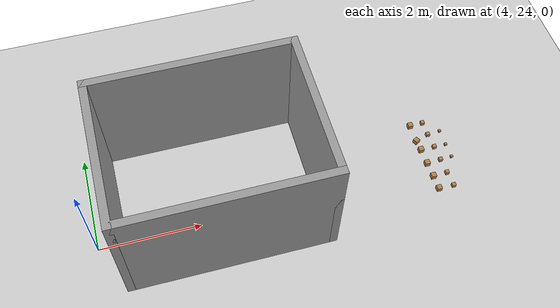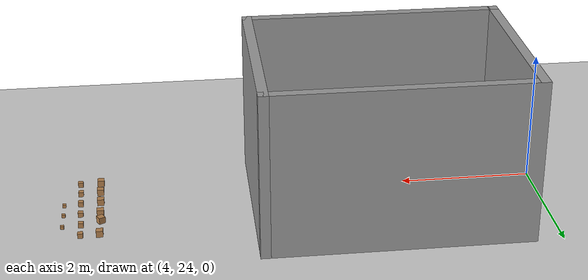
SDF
<sdf version="1.6">
 <world name="default">
  <model name="ground_plane">
   <static>1</static>
   <link name="link">
    <collision name="collision">
     <geometry><plane><normal>0 0 1</normal><size>105 105</size></plane></geometry>
     <surface>
      <contact><collide_bitmask>65535</collide_bitmask></contact>
      <friction><ode><mu>100</mu><mu2>50</mu2></ode></friction>
     </surface>
    </collision>
    <visual name="visual">
     <cast_shadows>0</cast_shadows>
     <geometry><plane><normal>0 0 1</normal><size>105 105</size></plane></geometry>
     <material>
      <script><uri>file://media/materials/scripts/gazebo.material</uri><name>Gazebo/Grey</name></script>
     </material>
    </visual>
   </link>
  </model>
  <model name="base3x4_29">
   <pose>6.40581 24.5341 0 0 -0 0</pose>
   <link name="Wall_18">
    <collision name="Wall_18_Collision">
     <geometry><box><size>3 0.15 2.5</size></box></geometry>
     <pose>0 0 1.25 0 -0 0</pose>
    </collision>
    <visual name="Wall_18_Visual">
     <pose>0 0 1.25 0 -0 0</pose>
     <geometry><box><size>3 0.15 2.5</size></box></geometry>
     <material>
      <script><uri>file://media/materials/scripts/gazebo.material</uri><name>Gazebo/Grey</name></script>
      <ambient>1 1 1 1</ambient>
     </material>
     <meta><layer>0</layer></meta>
    </visual>
    <pose>-1.925 -0 0 0 -0 -1.5708</pose>
   </link>
   <link name="Wall_19">
    <collision name="Wall_19_Collision">
     <geometry><box><size>4 0.15 2.5</size></box></geometry>
     <pose>0 0 1.25 0 -0 0</pose>
    </collision>
    <visual name="Wall_19_Visual">
     <pose>0 0 1.25 0 -0 0</pose>
     <geometry><box><size>4 0.15 2.5</size></box></geometry>
     <material>
      <script><uri>file://media/materials/scripts/gazebo.material</uri><name>Gazebo/Grey</name></script>
      <ambient>1 1 1 1</ambient>
     </material>
     <meta><layer>0</layer></meta>
    </visual>
    <pose>-0 -1.425 0 0 -0 0</pose>
   </link>
   <link name="Wall_20">
    <collision name="Wall_20_Collision">
     <geometry><box><size>3 0.15 2.5</size></box></geometry>
     <pose>0 0 1.25 0 -0 0</pose>
    </collision>
    <visual name="Wall_20_Visual">
     <pose>0 0 1.25 0 -0 0</pose>
     <geometry><box><size>3 0.15 2.5</size></box></geometry>
     <material>
      <script><uri>file://media/materials/scripts/gazebo.material</uri><name>Gazebo/Grey</name></script>
      <ambient>1 1 1 1</ambient>
     </material>
     <meta><layer>0</layer></meta>
    </visual>
    <pose>1.925 -0 0 0 -0 1.5708</pose>
   </link>
   <link name="Wall_21">
    <collision name="Wall_21_Collision">
     <geometry><box><size>4 0.15 2.5</size></box></geometry>
     <pose>0 0 1.25 0 -0 0</pose>
    </collision>
    <visual name="Wall_21_Visual">
     <pose>0 0 1.25 0 -0 0</pose>
     <geometry><box><size>4 0.15 2.5</size></box></geometry>
     <material>
      <script><uri>file://media/materials/scripts/gazebo.material</uri><name>Gazebo/Grey</name></script>
      <ambient>1 1 1 1</ambient>
     </material>
     <meta><layer>0</layer></meta>
    </visual>
    <pose>-0 1.425 0 0 -0 3.14159</pose>
   </link>
   <static>1</static>
  </model>
  <model name="wood_cube_10cm">
   <link name="link">
    <pose>0 0 0.05 0 -0 0</pose>
    <inertial>
     <mass>0.5167</mass>
     <inertia>
      <ixx>0.000861167</ixx>
      <ixy>0</ixy>
      <ixz>0</ixz>
      <iyy>0.000861167</iyy>
      <iyz>0</iyz>
      <izz>0.000861167</izz>
     </inertia>
    </inertial>
    <collision name="collision">
     <geometry><box><size>0.1 0.1 0.1</size></box></geometry>
     <surface>
      <contact>
       <poissons_ratio>0.347</poissons_ratio>
       <elastic_modulus>8.8e+09</elastic_modulus>
       <ode><kp>100000</kp><kd>100</kd><max_vel>100</max_vel><min_depth>0.001</min_depth></ode>
      </contact>
      <friction>
       <torsional>
        <coefficient>1</coefficient>
        <use_patch_radius>0</use_patch_radius>
        <surface_radius>0.01</surface_radius>
       </torsional>
      </friction>
     </surface>
    </collision>
    <visual name="visual">
     <geometry><box><size>0.1 0.1 0.1</size></box></geometry>
     <material>
      <script><uri>file://media/materials/scripts/gazebo.material</uri><name>Gazebo/Wood</name></script>
     </material>
    </visual>
   </link>
   <pose>10.6933 23.5723 -0.001013 0 -0 0</pose>
  </model>
  <model name="wood_cube_10cm_0">
   <link name="link">
    <pose>0 0 0.05 0 -0 0</pose>
    <inertial>
     <mass>0.5167</mass>
     <inertia>
      <ixx>0.000861167</ixx>
      <ixy>0</ixy>
      <ixz>0</ixz>
      <iyy>0.000861167</iyy>
      <iyz>0</iyz>
      <izz>0.000861167</izz>
     </inertia>
    </inertial>
    <collision name="collision">
     <geometry><box><size>0.1 0.1 0.1</size></box></geometry>
     <surface>
      <contact>
       <poissons_ratio>0.347</poissons_ratio>
       <elastic_modulus>8.8e+09</elastic_modulus>
       <ode><kp>100000</kp><kd>100</kd><max_vel>100</max_vel><min_depth>0.001</min_depth></ode>
      </contact>
      <friction>
       <torsional>
        <coefficient>1</coefficient>
        <use_patch_radius>0</use_patch_radius>
        <surface_radius>0.01</surface_radius>
       </torsional>
      </friction>
     </surface>
    </collision>
    <visual name="visual">
     <geometry><box><size>0.1 0.1 0.1</size></box></geometry>
     <material>
      <script><uri>file://media/materials/scripts/gazebo.material</uri><name>Gazebo/Wood</name></script>
     </material>
    </visual>
   </link>
   <pose>10.69 23.8636 -0.001013 0 -0 0</pose>
  </model>
  <model name="wood_cube_10cm_1">
   <link name="link">
    <pose>0 0 0.05 0 -0 0</pose>
    <inertial>
     <mass>0.5167</mass>
     <inertia>
      <ixx>0.000861167</ixx>
      <ixy>0</ixy>
      <ixz>0</ixz>
      <iyy>0.000861167</iyy>
      <iyz>0</iyz>
      <izz>0.000861167</izz>
     </inertia>
    </inertial>
    <collision name="collision">
     <geometry><box><size>0.1 0.1 0.1</size></box></geometry>
     <surface>
      <contact>
       <poissons_ratio>0.347</poissons_ratio>
       <elastic_modulus>8.8e+09</elastic_modulus>
       <ode><kp>100000</kp><kd>100</kd><max_vel>100</max_vel><min_depth>0.001</min_depth></ode>
      </contact>
      <friction>
       <torsional>
        <coefficient>1</coefficient>
        <use_patch_radius>0</use_patch_radius>
        <surface_radius>0.01</surface_radius>
       </torsional>
      </friction>
     </surface>
    </collision>
    <visual name="visual">
     <geometry><box><size>0.1 0.1 0.1</size></box></geometry>
     <material>
      <script><uri>file://media/materials/scripts/gazebo.material</uri><name>Gazebo/Wood</name></script>
     </material>
    </visual>
   </link>
   <pose>10.6798 24.1748 -0.001013 0 -0 0</pose>
  </model>
  <model name="wood_cube_10cm_2">
   <link name="link">
    <pose>0 0 0.05 0 -0 0</pose>
    <inertial>
     <mass>0.5167</mass>
     <inertia>
      <ixx>0.000861167</ixx>
      <ixy>0</ixy>
      <ixz>0</ixz>
      <iyy>0.000861167</iyy>
      <iyz>0</iyz>
      <izz>0.000861167</izz>
     </inertia>
    </inertial>
    <collision name="collision">
     <geometry><box><size>0.1 0.1 0.1</size></box></geometry>
     <surface>
      <contact>
       <poissons_ratio>0.347</poissons_ratio>
       <elastic_modulus>8.8e+09</elastic_modulus>
       <ode><kp>100000</kp><kd>100</kd><max_vel>100</max_vel><min_depth>0.001</min_depth></ode>
      </contact>
      <friction>
       <torsional>
        <coefficient>1</coefficient>
        <use_patch_radius>0</use_patch_radius>
        <surface_radius>0.01</surface_radius>
       </torsional>
      </friction>
     </surface>
    </collision>
    <visual name="visual">
     <geometry><box><size>0.1 0.1 0.1</size></box></geometry>
     <material>
      <script><uri>file://media/materials/scripts/gazebo.material</uri><name>Gazebo/Wood</name></script>
     </material>
    </visual>
   </link>
   <pose>10.676 24.5061 -0.001013 0 -0 0</pose>
  </model>
  <model name="wood_cube_10cm_3">
   <link name="link">
    <pose>0 0 0.05 0 -0 0</pose>
    <inertial>
     <mass>0.5167</mass>
     <inertia>
      <ixx>0.000861167</ixx>
      <ixy>0</ixy>
      <ixz>0</ixz>
      <iyy>0.000861167</iyy>
      <iyz>0</iyz>
      <izz>0.000861167</izz>
     </inertia>
    </inertial>
    <collision name="collision">
     <geometry><box><size>0.1 0.1 0.1</size></box></geometry>
     <surface>
      <contact>
       <poissons_ratio>0.347</poissons_ratio>
       <elastic_modulus>8.8e+09</elastic_modulus>
       <ode><kp>100000</kp><kd>100</kd><max_vel>100</max_vel><min_depth>0.001</min_depth></ode>
      </contact>
      <friction>
       <torsional>
        <coefficient>1</coefficient>
        <use_patch_radius>0</use_patch_radius>
        <surface_radius>0.01</surface_radius>
       </torsional>
      </friction>
     </surface>
    </collision>
    <visual name="visual">
     <geometry><box><size>0.1 0.1 0.1</size></box></geometry>
     <material>
      <script><uri>file://media/materials/scripts/gazebo.material</uri><name>Gazebo/Wood</name></script>
     </material>
    </visual>
   </link>
   <pose>10.6607 24.7274 -0.001013 0 0 -1.09026</pose>
  </model>
  <model name="wood_cube_10cm_4">
   <link name="link">
    <pose>0 0 0.05 0 -0 0</pose>
    <inertial>
     <mass>0.5167</mass>
     <inertia>
      <ixx>0.000861167</ixx>
      <ixy>0</ixy>
      <ixz>0</ixz>
      <iyy>0.000861167</iyy>
      <iyz>0</iyz>
      <izz>0.000861167</izz>
     </inertia>
    </inertial>
    <collision name="collision">
     <geometry><box><size>0.1 0.1 0.1</size></box></geometry>
     <surface>
      <contact>
       <poissons_ratio>0.347</poissons_ratio>
       <elastic_modulus>8.8e+09</elastic_modulus>
       <ode><kp>100000</kp><kd>100</kd><max_vel>100</max_vel><min_depth>0.001</min_depth></ode>
      </contact>
      <friction>
       <torsional>
        <coefficient>1</coefficient>
        <use_patch_radius>0</use_patch_radius>
        <surface_radius>0.01</surface_radius>
       </torsional>
      </friction>
     </surface>
    </collision>
    <visual name="visual">
     <geometry><box><size>0.1 0.1 0.1</size></box></geometry>
     <material>
      <script><uri>file://media/materials/scripts/gazebo.material</uri><name>Gazebo/Wood</name></script>
     </material>
    </visual>
   </link>
   <pose>10.6691 25.1156 -0.001013 0 -0 0</pose>
  </model>
  <model name="wood_cube_7_5cm">
   <link name="link">
    <pose>0 0 0.0375 0 -0 0</pose>
    <inertial>
     <mass>0.2249</mass>
     <inertia>
      <ixx>0.000210844</ixx>
      <ixy>0</ixy>
      <ixz>0</ixz>
      <iyy>0.000210844</iyy>
      <iyz>0</iyz>
      <izz>0.000210844</izz>
     </inertia>
    </inertial>
    <collision name="collision">
     <geometry><box><size>0.075 0.075 0.075</size></box></geometry>
     <surface>
      <contact>
       <poissons_ratio>0.347</poissons_ratio>
       <elastic_modulus>8.8e+09</elastic_modulus>
       <ode><kp>100000</kp><kd>100</kd><max_vel>100</max_vel><min_depth>0.001</min_depth></ode>
      </contact>
      <friction>
       <torsional>
        <coefficient>1</coefficient>
        <use_patch_radius>0</use_patch_radius>
        <surface_radius>0.01</surface_radius>
       </torsional>
      </friction>
     </surface>
    </collision>
    <visual name="visual">
     <geometry><box><size>0.075 0.075 0.075</size></box></geometry>
     <material>
      <script><uri>file://media/materials/scripts/gazebo.material</uri><name>Gazebo/Wood</name></script>
     </material>
    </visual>
   </link>
   <pose>11.0047 23.569 -0.001006 -0 -0 -0</pose>
  </model>
  <model name="wood_cube_7_5cm_0">
   <link name="link">
    <pose>0 0 0.0375 0 -0 0</pose>
    <inertial>
     <mass>0.2249</mass>
     <inertia>
      <ixx>0.000210844</ixx>
      <ixy>0</ixy>
      <ixz>0</ixz>
      <iyy>0.000210844</iyy>
      <iyz>0</iyz>
      <izz>0.000210844</izz>
     </inertia>
    </inertial>
    <collision name="collision">
     <geometry><box><size>0.075 0.075 0.075</size></box></geometry>
     <surface>
      <contact>
       <poissons_ratio>0.347</poissons_ratio>
       <elastic_modulus>8.8e+09</elastic_modulus>
       <ode><kp>100000</kp><kd>100</kd><max_vel>100</max_vel><min_depth>0.001</min_depth></ode>
      </contact>
      <friction>
       <torsional>
        <coefficient>1</coefficient>
        <use_patch_radius>0</use_patch_radius>
        <surface_radius>0.01</surface_radius>
       </torsional>
      </friction>
     </surface>
    </collision>
    <visual name="visual">
     <geometry><box><size>0.075 0.075 0.075</size></box></geometry>
     <material>
      <script><uri>file://media/materials/scripts/gazebo.material</uri><name>Gazebo/Wood</name></script>
     </material>
    </visual>
   </link>
   <pose>10.9881 23.8737 -0.001006 -0 -0 -0</pose>
  </model>
  <model name="wood_cube_7_5cm_1">
   <link name="link">
    <pose>0 0 0.0375 0 -0 0</pose>
    <inertial>
     <mass>0.2249</mass>
     <inertia>
      <ixx>0.000210844</ixx>
      <ixy>0</ixy>
      <ixz>0</ixz>
      <iyy>0.000210844</iyy>
      <iyz>0</iyz>
      <izz>0.000210844</izz>
     </inertia>
    </inertial>
    <collision name="collision">
     <geometry><box><size>0.075 0.075 0.075</size></box></geometry>
     <surface>
      <contact>
       <poissons_ratio>0.347</poissons_ratio>
       <elastic_modulus>8.8e+09</elastic_modulus>
       <ode><kp>100000</kp><kd>100</kd><max_vel>100</max_vel><min_depth>0.001</min_depth></ode>
      </contact>
      <friction>
       <torsional>
        <coefficient>1</coefficient>
        <use_patch_radius>0</use_patch_radius>
        <surface_radius>0.01</surface_radius>
       </torsional>
      </friction>
     </surface>
    </collision>
    <visual name="visual">
     <geometry><box><size>0.075 0.075 0.075</size></box></geometry>
     <material>
      <script><uri>file://media/materials/scripts/gazebo.material</uri><name>Gazebo/Wood</name></script>
     </material>
    </visual>
   </link>
   <pose>10.9777 24.1915 -0.001006 -0 -0 -0</pose>
  </model>
  <model name="wood_cube_7_5cm_2">
   <link name="link">
    <pose>0 0 0.0375 0 -0 0</pose>
    <inertial>
     <mass>0.2249</mass>
     <inertia>
      <ixx>0.000210844</ixx>
      <ixy>0</ixy>
      <ixz>0</ixz>
      <iyy>0.000210844</iyy>
      <iyz>0</iyz>
      <izz>0.000210844</izz>
     </inertia>
    </inertial>
    <collision name="collision">
     <geometry><box><size>0.075 0.075 0.075</size></box></geometry>
     <surface>
      <contact>
       <poissons_ratio>0.347</poissons_ratio>
       <elastic_modulus>8.8e+09</elastic_modulus>
       <ode><kp>100000</kp><kd>100</kd><max_vel>100</max_vel><min_depth>0.001</min_depth></ode>
      </contact>
      <friction>
       <torsional>
        <coefficient>1</coefficient>
        <use_patch_radius>0</use_patch_radius>
        <surface_radius>0.01</surface_radius>
       </torsional>
      </friction>
     </surface>
    </collision>
    <visual name="visual">
     <geometry><box><size>0.075 0.075 0.075</size></box></geometry>
     <material>
      <script><uri>file://media/materials/scripts/gazebo.material</uri><name>Gazebo/Wood</name></script>
     </material>
    </visual>
   </link>
   <pose>10.9676 24.5094 -0.001006 -0 -0 -0</pose>
  </model>
  <model name="wood_cube_7_5cm_3">
   <link name="link">
    <pose>0 0 0.0375 0 -0 0</pose>
    <inertial>
     <mass>0.2249</mass>
     <inertia>
      <ixx>0.000210844</ixx>
      <ixy>0</ixy>
      <ixz>0</ixz>
      <iyy>0.000210844</iyy>
      <iyz>0</iyz>
      <izz>0.000210844</izz>
     </inertia>
    </inertial>
    <collision name="collision">
     <geometry><box><size>0.075 0.075 0.075</size></box></geometry>
     <surface>
      <contact>
       <poissons_ratio>0.347</poissons_ratio>
       <elastic_modulus>8.8e+09</elastic_modulus>
       <ode><kp>100000</kp><kd>100</kd><max_vel>100</max_vel><min_depth>0.001</min_depth></ode>
      </contact>
      <friction>
       <torsional>
        <coefficient>1</coefficient>
        <use_patch_radius>0</use_patch_radius>
        <surface_radius>0.01</surface_radius>
       </torsional>
      </friction>
     </surface>
    </collision>
    <visual name="visual">
     <geometry><box><size>0.075 0.075 0.075</size></box></geometry>
     <material>
      <script><uri>file://media/materials/scripts/gazebo.material</uri><name>Gazebo/Wood</name></script>
     </material>
    </visual>
   </link>
   <pose>10.9506 24.8272 -0.001006 0 -0 1.5e-05</pose>
  </model>
  <model name="wood_cube_7_5cm_4">
   <link name="link">
    <pose>0 0 0.0375 0 -0 0</pose>
    <inertial>
     <mass>0.2249</mass>
     <inertia>
      <ixx>0.000210844</ixx>
      <ixy>0</ixy>
      <ixz>0</ixz>
      <iyy>0.000210844</iyy>
      <iyz>0</iyz>
      <izz>0.000210844</izz>
     </inertia>
    </inertial>
    <collision name="collision">
     <geometry><box><size>0.075 0.075 0.075</size></box></geometry>
     <surface>
      <contact>
       <poissons_ratio>0.347</poissons_ratio>
       <elastic_modulus>8.8e+09</elastic_modulus>
       <ode><kp>100000</kp><kd>100</kd><max_vel>100</max_vel><min_depth>0.001</min_depth></ode>
      </contact>
      <friction>
       <torsional>
        <coefficient>1</coefficient>
        <use_patch_radius>0</use_patch_radius>
        <surface_radius>0.01</surface_radius>
       </torsional>
      </friction>
     </surface>
    </collision>
    <visual name="visual">
     <geometry><box><size>0.075 0.075 0.075</size></box></geometry>
     <material>
      <script><uri>file://media/materials/scripts/gazebo.material</uri><name>Gazebo/Wood</name></script>
     </material>
    </visual>
   </link>
   <pose>10.9473 25.1252 -0.001006 0 -0 5e-06</pose>
  </model>
  <model name="wood_cube_5cm_1">
   <link name="link">
    <pose>0 0 0.025 0 -0 0</pose>
    <inertial>
     <mass>0.0565</mass>
     <inertia>
      <ixx>2.35417e-05</ixx>
      <ixy>0</ixy>
      <ixz>0</ixz>
      <iyy>2.35417e-05</iyy>
      <iyz>0</iyz>
      <izz>2.35417e-05</izz>
     </inertia>
    </inertial>
    <collision name="collision">
     <geometry><box><size>0.05 0.05 0.05</size></box></geometry>
     <surface>
      <contact>
       <poissons_ratio>0.347</poissons_ratio>
       <elastic_modulus>8.8e+09</elastic_modulus>
       <ode><kp>100000</kp><kd>1</kd><max_vel>1</max_vel><min_depth>0.001</min_depth></ode>
      </contact>
      <friction>
       <torsional>
        <coefficient>1</coefficient>
        <use_patch_radius>0</use_patch_radius>
        <surface_radius>0.05</surface_radius>
       </torsional>
      </friction>
     </surface>
    </collision>
    <visual name="visual">
     <geometry><box><size>0.05 0.05 0.05</size></box></geometry>
     <material>
      <script><uri>file://media/materials/scripts/gazebo.material</uri><name>Gazebo/Wood</name></script>
     </material>
    </visual>
   </link>
   <pose>11.2228 24.2076 -0.001001 0 -0 0</pose>
  </model>
  <model name="wood_cube_5cm_2">
   <link name="link">
    <pose>0 0 0.025 0 -0 0</pose>
    <inertial>
     <mass>0.0565</mass>
     <inertia>
      <ixx>2.35417e-05</ixx>
      <ixy>0</ixy>
      <ixz>0</ixz>
      <iyy>2.35417e-05</iyy>
      <iyz>0</iyz>
      <izz>2.35417e-05</izz>
     </inertia>
    </inertial>
    <collision name="collision">
     <geometry><box><size>0.05 0.05 0.05</size></box></geometry>
     <surface>
      <contact>
       <poissons_ratio>0.347</poissons_ratio>
       <elastic_modulus>8.8e+09</elastic_modulus>
       <ode><kp>100000</kp><kd>1</kd><max_vel>1</max_vel><min_depth>0.001</min_depth></ode>
      </contact>
      <friction>
       <torsional>
        <coefficient>1</coefficient>
        <use_patch_radius>0</use_patch_radius>
        <surface_radius>0.05</surface_radius>
       </torsional>
      </friction>
     </surface>
    </collision>
    <visual name="visual">
     <geometry><box><size>0.05 0.05 0.05</size></box></geometry>
     <material>
      <script><uri>file://media/materials/scripts/gazebo.material</uri><name>Gazebo/Wood</name></script>
     </material>
    </visual>
   </link>
   <pose>11.2193 24.5122 -0.001001 0 -0 0</pose>
  </model>
  <model name="wood_cube_5cm_3">
   <link name="link">
    <pose>0 0 0.025 0 -0 0</pose>
    <inertial>
     <mass>0.0565</mass>
     <inertia>
      <ixx>2.35417e-05</ixx>
      <ixy>0</ixy>
      <ixz>0</ixz>
      <iyy>2.35417e-05</iyy>
      <iyz>0</iyz>
      <izz>2.35417e-05</izz>
     </inertia>
    </inertial>
    <collision name="collision">
     <geometry><box><size>0.05 0.05 0.05</size></box></geometry>
     <surface>
      <contact>
       <poissons_ratio>0.347</poissons_ratio>
       <elastic_modulus>8.8e+09</elastic_modulus>
       <ode><kp>100000</kp><kd>1</kd><max_vel>1</max_vel><min_depth>0.001</min_depth></ode>
      </contact>
      <friction>
       <torsional>
        <coefficient>1</coefficient>
        <use_patch_radius>0</use_patch_radius>
        <surface_radius>0.05</surface_radius>
       </torsional>
      </friction>
     </surface>
    </collision>
    <visual name="visual">
     <geometry><box><size>0.05 0.05 0.05</size></box></geometry>
     <material>
      <script><uri>file://media/materials/scripts/gazebo.material</uri><name>Gazebo/Wood</name></script>
     </material>
    </visual>
   </link>
   <pose>11.2221 24.8504 -0.001001 0 -0 0</pose>
  </model>
 </world>
</sdf>
